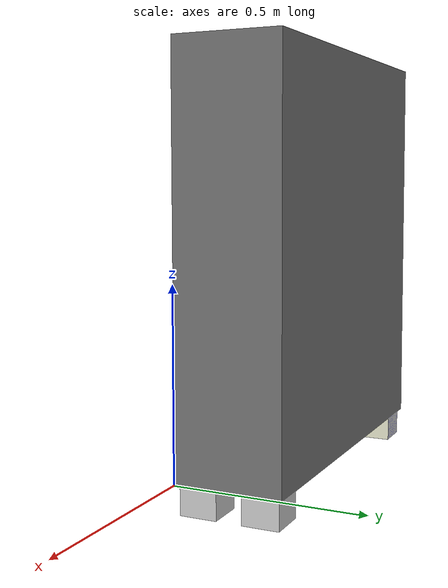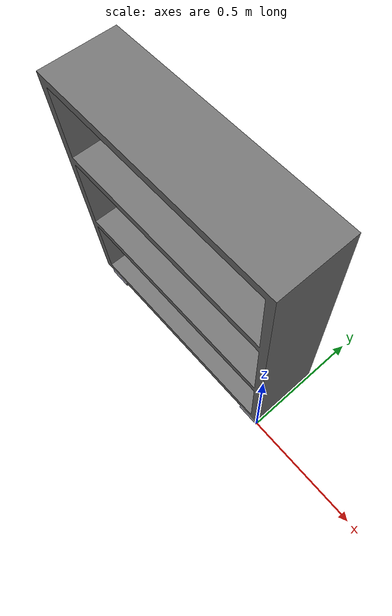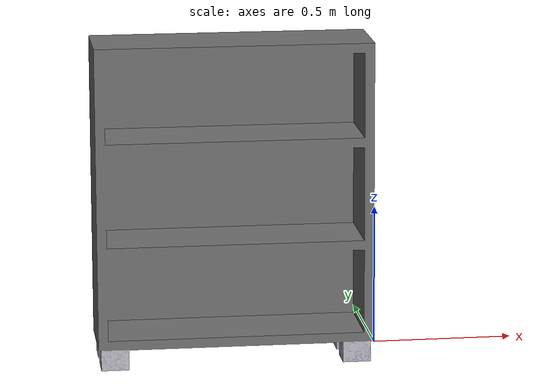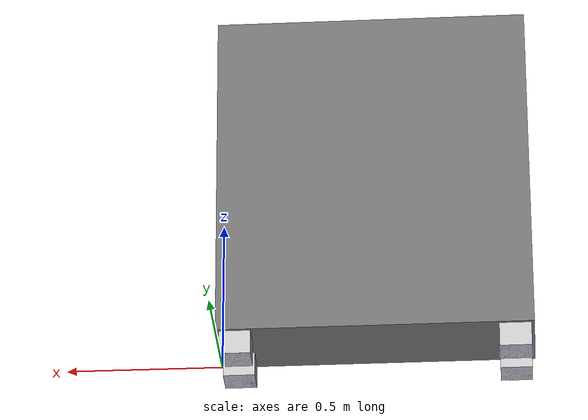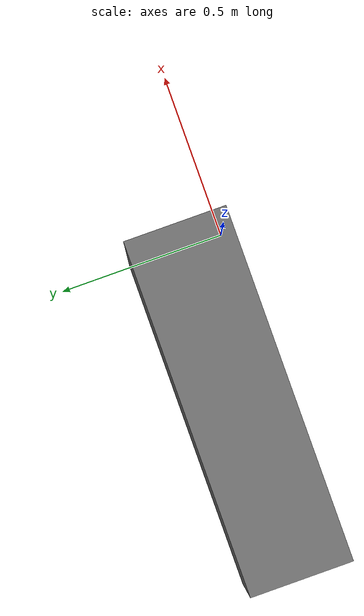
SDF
<?xml version='1.0'?>
<sdf version='1.6'>
  <model name='shelf'>
    <static>true</static>
    <link name="body">
      <visual name="visual">
            <geometry>
                <mesh>
                    <uri>model://shelf/model.dae</uri>
                </mesh>
            </geometry>
        </visual>
        <collision name="collision">
            <geometry>
                <mesh>
                    <uri>model://shelf/model.dae</uri>
                </mesh>
            </geometry>
        </collision>
    </link>
  </model>
</sdf>
